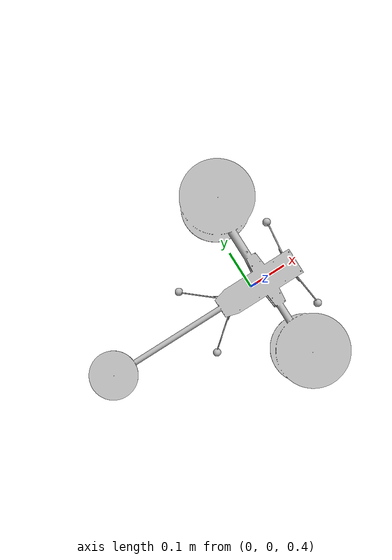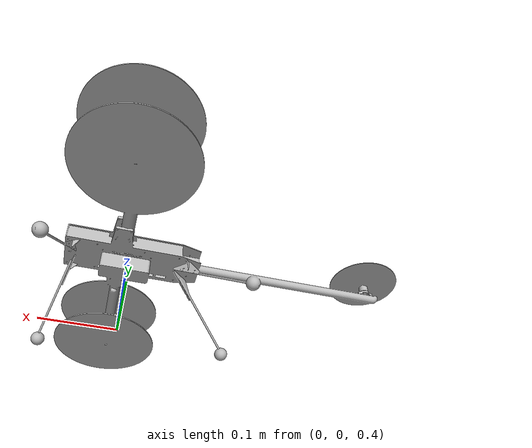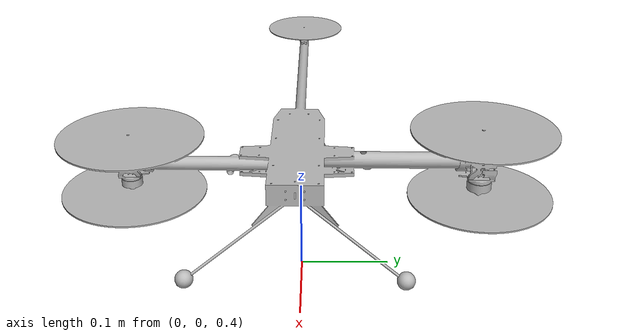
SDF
<?xml version='1.0'?>
<sdf version="1.6">
  <model name="kolibri">
    <pose>0 0 0.5 0 0 0</pose>
    <static>false</static>
    <link name="base_link">
      <inertial>
        <mass>5.7</mass>
        <inertia> <!-- inertias are tricky to compute -->
          <!-- http://gazebosim.org/tutorials?tut=inertia&cat=build_robot -->
          <ixx>0.59</ixx>       <!-- for a box: ixx = 0.083 * mass * (y*y + z*z) -->
          <ixy>0.0</ixy>         <!-- for a box: ixy = 0 -->
          <ixz>0.0</ixz>         <!-- for a box: ixz = 0 -->
          <iyy>0.59</iyy>       <!-- for a box: iyy = 0.083 * mass * (x*x + z*z) -->
          <iyz>0.0</iyz>         <!-- for a box: iyz = 0 -->
          <izz>0.95</izz>       <!-- for a box: izz = 0.083 * mass * (x*x + y*y) -->
        </inertia>
      </inertial>
      <collision name="collision">
        <geometry>
            <mesh><uri>meshes/voliro_t.stl</uri></mesh>
        </geometry>
      </collision>
      <visual name="base_link_visual">
        <geometry>
          <mesh><uri>meshes/voliro_t.dae</uri></mesh>
        </geometry>
      </visual>

      <light name="right_light_source" type="spot">
        <pose frame="">0 -0.2 -0.05 3.131592653589795 -1.5107899999999999 1.87079633</pose>
        <attenuation>
            <range>15</range>
            <linear>0</linear>
            <constant>0.1</constant>
            <quadratic>0.01</quadratic>
        </attenuation>
        <diffuse>0.8 0.8 0.5 1</diffuse>
        <specular>0.8 0.8 0.5 1</specular>
        <spot>
            <inner_angle>1</inner_angle>
            <outer_angle>1.1</outer_angle>
            <falloff>1</falloff>
        </spot>
        <direction>0 0 -1</direction>
        <cast_shadows>1</cast_shadows>
      </light>

      <light name="left_light_source" type="spot">
        <pose frame="">0 0.2 -0.05 3.131592653589795 -1.5107899999999999 -1.870796333</pose>
        <attenuation>
            <range>15</range>
            <linear>0</linear>
            <constant>0.1</constant>
            <quadratic>0.01</quadratic>
        </attenuation>
        <diffuse>0.8 0.8 0.5 1</diffuse>
        <specular>0.8 0.8 0.5 1</specular>
        <spot>
            <inner_angle>1</inner_angle>
            <outer_angle>1.1</outer_angle>
            <falloff>1</falloff>
        </spot>
        <direction>0 0 -1</direction>
        <cast_shadows>1</cast_shadows>
      </light>

      <light name="front_light_source" type="spot">
        <pose frame="">0.15 0 -0.05 3.131592653589795 -1.5107899999999999 3.141592659999</pose>
        <attenuation>
            <range>15</range>
            <linear>0</linear>
            <constant>0.1</constant>
            <quadratic>0.01</quadratic>
        </attenuation>
        <diffuse>0.8 0.8 0.5 1</diffuse>
        <specular>0.8 0.8 0.5 1</specular>
        <spot>
            <inner_angle>1</inner_angle>
            <outer_angle>1.1</outer_angle>
            <falloff>1</falloff>
        </spot>
        <direction>0 0 -1</direction>
        <cast_shadows>1</cast_shadows>
      </light>

      <sensor name="imu_sensor" type="imu">
        <always_on>1</always_on>
        <update_rate>250</update_rate>
        <imu>
            <enable_orientation>0</enable_orientation>
            <angular_velocity>
                <x>
                    <noise type="gaussian">
                        <mean>0</mean>
                        <stddev>0.009</stddev>
                        <bias_mean>0.00075</bias_mean>
                        <bias_stddev>0.005</bias_stddev>
                        <dynamic_bias_stddev>0.00002</dynamic_bias_stddev>
                        <dynamic_bias_correlation_time>400.0</dynamic_bias_correlation_time>
                        <precision>0.00025</precision>
                    </noise>
                </x>
                <y>
                    <noise type="gaussian">
                        <mean>0</mean>
                        <stddev>0.009</stddev>
                        <bias_mean>0.00075</bias_mean>
                        <bias_stddev>0.005</bias_stddev>
                        <dynamic_bias_stddev>0.00002</dynamic_bias_stddev>
                        <dynamic_bias_correlation_time>400.0</dynamic_bias_correlation_time>
                        <precision>0.00025</precision>
                    </noise>
                </y>
                <z>
                    <noise type="gaussian">
                        <mean>0</mean>
                        <stddev>0.009</stddev>
                        <bias_mean>0.00075</bias_mean>
                        <bias_stddev>0.005</bias_stddev>
                        <dynamic_bias_stddev>0.00002</dynamic_bias_stddev>
                        <dynamic_bias_correlation_time>400.0</dynamic_bias_correlation_time>
                        <precision>0.00025</precision>
                    </noise>
                </z>
            </angular_velocity>
            <linear_acceleration>
                <x>
                    <noise type="gaussian">
                        <mean>0</mean>
                        <stddev>0.021</stddev>
                        <bias_mean>0.05</bias_mean>
                        <bias_stddev>0.0075</bias_stddev>
                        <dynamic_bias_stddev>0.000375</dynamic_bias_stddev>
                        <dynamic_bias_correlation_time>175.0</dynamic_bias_correlation_time>
                        <precision>0.005</precision>
                    </noise>
                </x>
                <y>
                    <noise type="gaussian">
                        <mean>0</mean>
                        <stddev>0.021</stddev>
                        <bias_mean>0.05</bias_mean>
                        <bias_stddev>0.0075</bias_stddev>
                        <dynamic_bias_stddev>0.000375</dynamic_bias_stddev>
                        <dynamic_bias_correlation_time>175.0</dynamic_bias_correlation_time>
                        <precision>0.005</precision>
                    </noise>
                </y>
                <z>
                    <noise type="gaussian">
                        <mean>0</mean>
                        <stddev>0.021</stddev>
                        <bias_mean>0.05</bias_mean>
                        <bias_stddev>0.0075</bias_stddev>
                        <dynamic_bias_stddev>0.000375</dynamic_bias_stddev>
                        <dynamic_bias_correlation_time>175.0</dynamic_bias_correlation_time>
                        <precision>0.005</precision>
                    </noise>
                </z>
            </linear_acceleration>
        </imu>
      </sensor>

      <sensor name="top_lidar" type="gpu_lidar"> <!-- OS0 -->
        <visualize>0</visualize>
        <update_rate>10</update_rate>
        <lidar>
          <scan>
            <horizontal>
              <samples>1024</samples>
              <resolution>1</resolution>
              <min_angle>-3.1459</min_angle>
              <max_angle>3.1459</max_angle>
            </horizontal>
            <vertical>
              <samples>64</samples>
              <resolution>1</resolution>
              <min_angle>-0.785398</min_angle>
              <max_angle>0.785398</max_angle>
            </vertical>
          </scan>
          <range>
            <min>0.25</min>
            <max>55</max>
            <resolution>0.01</resolution>
          </range>
          <noise>
            <type>gaussian</type>
            <mean>0</mean>
            <stddev>0.01</stddev>
          </noise>
        </lidar>
        <pose frame="">0.27 0 0.2676 0 -0 0</pose>
      </sensor>

      <sensor name="camera_front_left" type="camera">
        <pose>0.1 0.15 -0.05 0 0 0</pose>
        <always_on>1</always_on>
        <update_rate>20</update_rate>
        <camera name="camera_front_left">
            <horizontal_fov>1.9</horizontal_fov>
            <lens>
                <intrinsics>
                    <fx>1108.952913</fx>
                    <fy>1110.658360</fy>
                    <cx>729.533992</cx>
                    <cy>544.985715</cy>
                    <s>1</s>
                </intrinsics>
            </lens>
            <distortion>
                <k1>0.0</k1>
                <k2>0.0</k2>
                <k3>0.0</k3>
                <p1>0.0</p1>
                <p2>0.0</p2>
                <center>0.5 0.5</center>
            </distortion>
            <image>
                <width>728</width>
                <height>544</height>
                <format>R8G8B8</format>
            </image>
            <clip>
                <near>0.02</near>
                <far>100</far>
            </clip>
            <noise>
                <type>gaussian</type>
                <mean>0</mean>
                <stddev>0.007</stddev>
            </noise>
        </camera>
      </sensor>

      <sensor name="camera_front_right" type="camera">
        <pose>0.1 -0.15 -0.05 0 0 0</pose>
        <always_on>1</always_on>
        <update_rate>20</update_rate>
        <camera name="camera_front_right">
            <horizontal_fov>1.9</horizontal_fov>
            <lens>
                <intrinsics>
                    <fx>1108.952913</fx>
                    <fy>1110.658360</fy>
                    <cx>729.533992</cx>
                    <cy>544.985715</cy>
                    <s>1</s>
                </intrinsics>
            </lens>
            <distortion>
                <k1>0.0</k1>
                <k2>0.0</k2>
                <k3>0.0</k3>
                <p1>0.0</p1>
                <p2>0.0</p2>
                <center>0.5 0.5</center>
            </distortion>
            <image>
                <width>728</width>
                <height>544</height>
                <format>R8G8B8</format>
            </image>
            <clip>
                <near>0.02</near>
                <far>100</far>
            </clip>
            <noise>
                <type>gaussian</type>
                <mean>0</mean>
                <stddev>0.007</stddev>
            </noise>
        </camera>
      </sensor>
      <sensor name="camera_down" type="camera">
        <pose>0 0 -0.1 0 1.57079633 0</pose>
        <always_on>1</always_on>
        <update_rate>20</update_rate>
        <camera name="camera_down">
            <horizontal_fov>1.9</horizontal_fov>
            <lens>
                <intrinsics>
                    <fx>1108.952913</fx>
                    <fy>1110.658360</fy>
                    <cx>729.533992</cx>
                    <cy>544.985715</cy>
                    <s>1</s>
                </intrinsics>
            </lens>
            <distortion>
                <k1>0.0</k1>
                <k2>0.0</k2>
                <k3>0.0</k3>
                <p1>0.0</p1>
                <p2>0.0</p2>
                <center>0.5 0.5</center>
            </distortion>
            <image>
                <width>728</width>
                <height>544</height>
                <format>R8G8B8</format>
            </image>
            <clip>
                <near>0.02</near>
                <far>100</far>
            </clip>
            <noise>
                <type>gaussian</type>
                <mean>0</mean>
                <stddev>0.007</stddev>
            </noise>
        </camera>
      </sensor>

      <sensor name="camera_back_left" type="camera">
        <pose>-.3 0.1 -0.05 0 0.090000 2.35619449</pose>
        <always_on>1</always_on>
        <update_rate>20</update_rate>
        <camera name="camera_back_left">
            <horizontal_fov>1.9</horizontal_fov>
            <lens>
                <intrinsics>
                    <fx>1108.952913</fx>
                    <fy>1110.658360</fy>
                    <cx>729.533992</cx>
                    <cy>544.985715</cy>
                    <s>1</s>
                </intrinsics>
            </lens>
            <distortion>
                <k1>0.0</k1>
                <k2>0.0</k2>
                <k3>0.0</k3>
                <p1>0.0</p1>
                <p2>0.0</p2>
                <center>0.5 0.5</center>
            </distortion>
            <image>
                <width>728</width>
                <height>544</height>
                <format>R8G8B8</format>
            </image>
            <clip>
                <near>0.02</near>
                <far>100</far>
            </clip>
            <noise>
                <type>gaussian</type>
                <mean>0</mean>
                <stddev>0.007</stddev>
            </noise>
        </camera>
      </sensor>

      <sensor name="camera_back_left2" type="camera">
        <pose>-.3 0.1 -0.02 0 0.090000 2.35619449</pose>
        <always_on>1</always_on>
        <update_rate>20</update_rate>
        <camera name="camera_back_left2">
            <horizontal_fov>1.9</horizontal_fov>
            <lens>
                <intrinsics>
                    <fx>1108.952913</fx>
                    <fy>1110.658360</fy>
                    <cx>729.533992</cx>
                    <cy>544.985715</cy>
                    <s>1</s>
                </intrinsics>
            </lens>
            <distortion>
                <k1>0.0</k1>
                <k2>0.0</k2>
                <k3>0.0</k3>
                <p1>0.0</p1>
                <p2>0.0</p2>
                <center>0.5 0.5</center>
            </distortion>
            <image>
                <width>728</width>
                <height>544</height>
                <format>R8G8B8</format>
            </image>
            <clip>
                <near>0.02</near>
                <far>100</far>
            </clip>
            <noise>
                <type>gaussian</type>
                <mean>0</mean>
                <stddev>0.007</stddev>
            </noise>
        </camera>
      </sensor>

      <sensor name="camera_back_right" type="camera">
        <pose>-.3 -0.1 -0.05 0 0.090000 -2.35619449</pose>
        <always_on>1</always_on>
        <update_rate>20</update_rate>
        <camera name="camera_back_right">
            <horizontal_fov>1.9</horizontal_fov>
            <lens>
                <intrinsics>
                    <fx>1108.952913</fx>
                    <fy>1110.658360</fy>
                    <cx>729.533992</cx>
                    <cy>544.985715</cy>
                    <s>1</s>
                </intrinsics>
            </lens>
            <distortion>
                <k1>0.0</k1>
                <k2>0.0</k2>
                <k3>0.0</k3>
                <p1>0.0</p1>
                <p2>0.0</p2>
                <center>0.5 0.5</center>
            </distortion>
            <image>
                <width>728</width>
                <height>544</height>
                <format>R8G8B8</format>
            </image>
            <clip>
                <near>0.02</near>
                <far>100</far>
            </clip>
            <noise>
                <type>gaussian</type>
                <mean>0</mean>
                <stddev>0.007</stddev>
            </noise>
        </camera>
      </sensor>
    </link>
  </model>
</sdf>
